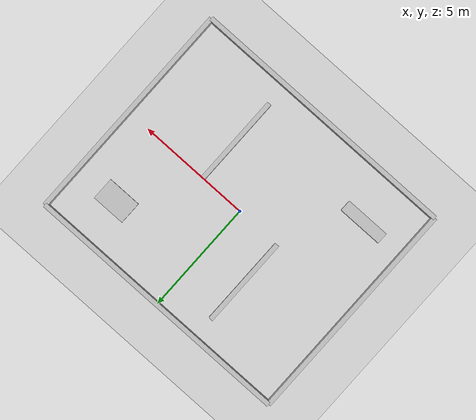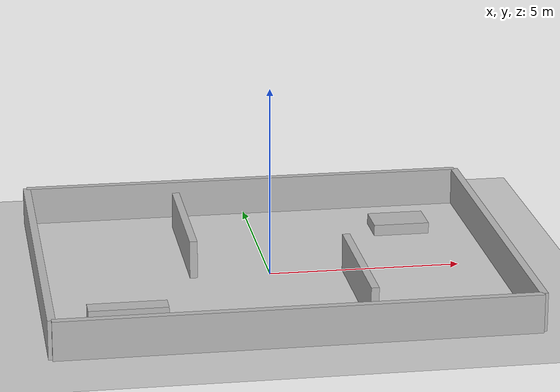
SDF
<?xml version="1.0" ?>
<sdf version="1.6">
  <world name="airport_terminal">

    <include>
      <uri>model://ground_plane</uri>
    </include>

    <include>
      <uri>model://sun</uri>
    </include>

    <!-- Dış duvarlar -->
    <model name="wall_back">
      <static>true</static>
      <pose>0 5 0.5 0 0 0</pose>
      <link name="link">
        <visual name="visual"><geometry><box><size>12 0.2 1</size></box></geometry></visual>
        <collision name="collision"><geometry><box><size>12 0.2 1</size></box></geometry></collision>
      </link>
    </model>

    <model name="wall_front">
      <static>true</static>
      <pose>0 -5 0.5 0 0 0</pose>
      <link name="link">
        <visual name="visual"><geometry><box><size>12 0.2 1</size></box></geometry></visual>
        <collision name="collision"><geometry><box><size>12 0.2 1</size></box></geometry></collision>
      </link>
    </model>

    <model name="wall_left">
      <static>true</static>
      <pose>-6 0 0.5 0 0 0</pose>
      <link name="link">
        <visual name="visual"><geometry><box><size>0.2 10 1</size></box></geometry></visual>
        <collision name="collision"><geometry><box><size>0.2 10 1</size></box></geometry></collision>
      </link>
    </model>

    <model name="wall_right">
      <static>true</static>
      <pose>6 0 0.5 0 0 0</pose>
      <link name="link">
        <visual name="visual"><geometry><box><size>0.2 10 1</size></box></geometry></visual>
        <collision name="collision"><geometry><box><size>0.2 10 1</size></box></geometry></collision>
      </link>
    </model>

    <!-- İç koridor/labirent duvarları -->
    <model name="corridor_1">
      <static>true</static>
      <pose>-2 2 0.5 0 0 0</pose>
      <link name="link">
        <visual name="visual"><geometry><box><size>0.2 4 1</size></box></geometry></visual>
        <collision name="collision"><geometry><box><size>0.2 4 1</size></box></geometry></collision>
      </link>
    </model>

    <model name="corridor_2">
      <static>true</static>
      <pose>2 -2 0.5 0 0 0</pose>
      <link name="link">
        <visual name="visual"><geometry><box><size>0.2 4 1</size></box></geometry></visual>
        <collision name="collision"><geometry><box><size>0.2 4 1</size></box></geometry></collision>
      </link>
    </model>

    <model name="baggage_area">
      <static>true</static>
      <pose>4 3 0.15 0 0 0</pose>
      <link name="link">
        <visual name="visual"><geometry><box><size>1.5 1 0.3</size></box></geometry></visual>
        <collision name="collision"><geometry><box><size>1.5 1 0.3</size></box></geometry></collision>
      </link>
    </model>

    <model name="check_in_desk">
      <static>true</static>
      <pose>-4 -3 0.25 0 0 0</pose>
      <link name="link">
        <visual name="visual"><geometry><box><size>2 0.5 0.5</size></box></geometry></visual>
        <collision name="collision"><geometry><box><size>2 0.5 0.5</size></box></geometry></collision>
      </link>
    </model>

  </world>
</sdf>
